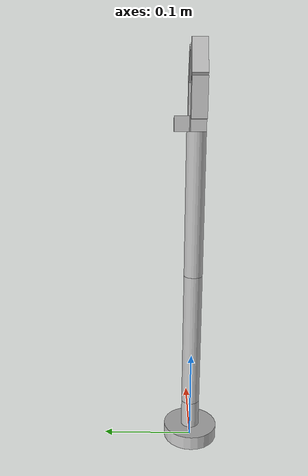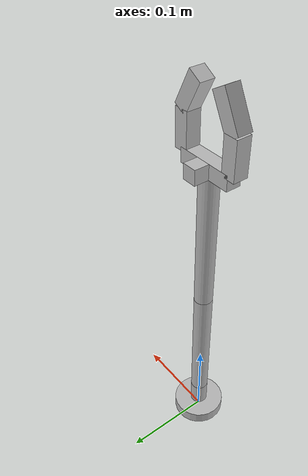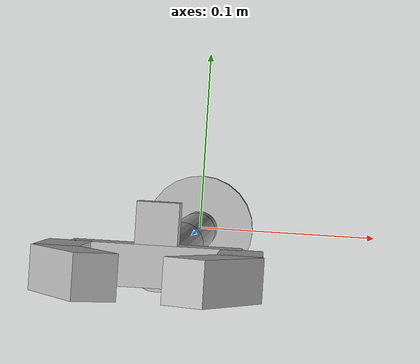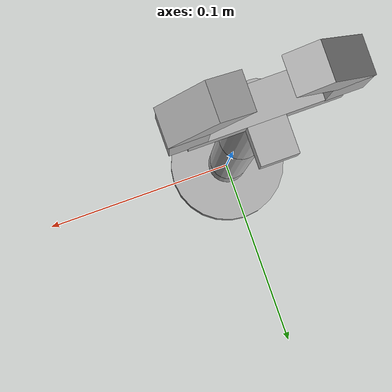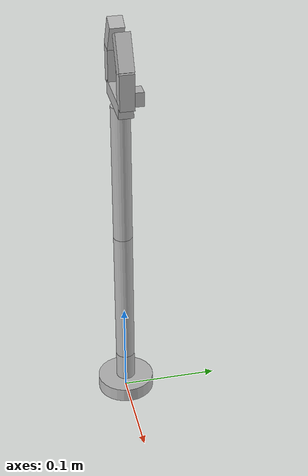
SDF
<?xml version="1.0" ?>
<sdf version="1.6">
	<model name="RobotArm">
		<link name="arm_base">
			<pose>0 0 0.0075 0 0 0</pose>
			<inertial>
				<inertia>
					<ixx>0.24375000</ixx>
					<iyy>0.24375000</iyy>
					<izz>0.45000000</izz>
				</inertia>
				<mass>1000.00000000</mass>
			</inertial>
			<visual name="arm_base_vis">
				<geometry>
					<cylinder>
						<radius>0.03</radius>
						<length>0.015</length>
					</cylinder>
				</geometry>
			</visual>
			<collision name="arm_base_col">
				<geometry>
					<cylinder>
						<radius>0.03</radius>
						<length>0.015</length>
					</cylinder>
				</geometry>
			</collision>
		</link>
		<joint name="bodyLink_armBase" type="fixed">
			<pose>0 0 0 0 0 0</pose>
			<child>arm_base</child>
			<parent>body_link</parent>
		</joint>
		<link name="arm_base_top">
			<pose>0 0 0.03 0 0 0</pose>
			<inertial>
				<inertia>
					<ixx>0.00005000</ixx>
					<iyy>0.00005000</iyy>
					<izz>0.00002500</izz>
				</inertia>
				<mass>0.50000000</mass>
			</inertial>
			<visual name="arm_base_top_vis">
				<geometry>
					<cylinder>
						<radius>0.01</radius>
						<length>0.03</length>
					</cylinder>
				</geometry>
			</visual>
			<collision name="arm_base_top_col">
				<geometry>
					<cylinder>
						<radius>0.01</radius>
						<length>0.03</length>
					</cylinder>
				</geometry>
			</collision>
		</link>
		<joint name="armBase_armBaseTop" type="revolute">
			<pose>0 0 -0.015 0 0 0</pose>
			<child>arm_base_top</child>
			<parent>arm_base</parent>
			<axis>
				<xyz>0 0 1</xyz>
				<dynamics>
					<friction>0.05</friction>
					<damping>0.03</damping>
				</dynamics>
			</axis>
		</joint>
		<link name="arm1">
			<pose>0 0 0.12 0 0 0</pose>
			<inertial>
				<inertia>
					<ixx>0.00190000</ixx>
					<iyy>0.00190000</iyy>
					<izz>0.00005000</izz>
				</inertia>
				<mass>1.00000000</mass>
			</inertial>
			<visual name="arm1_vis">
				<geometry>
					<cylinder>
						<radius>0.01</radius>
						<length>0.15</length>
					</cylinder>
				</geometry>
			</visual>
			<collision name="arm1_col">
				<geometry>
					<cylinder>
						<radius>0.01</radius>
						<length>0.15</length>
					</cylinder>
				</geometry>
			</collision>
		</link>
		<joint name="armBaseTop_arm1" type="revolute">
			<pose>0 0 -0.075 0 0 0</pose>
			<child>arm1</child>
			<parent>arm_base_top</parent>
			<axis>
				<xyz>1 0 0</xyz>
				<dynamics>
					<friction>0.05</friction>
					<damping>0.03</damping>
				</dynamics>
				<limit>
					<upper>3.141592653589793</upper>
					<lower>-3.141592653589793</lower>
				</limit>
			</axis>
		</joint>
		<link name="arm2">
			<pose>0 0 0.27 0 0 0</pose>
			<inertial>
				<inertia>
					<ixx>0.00190000</ixx>
					<iyy>0.00190000</iyy>
					<izz>0.00005000</izz>
				</inertia>
				<mass>1.00000000</mass>
			</inertial>
			<visual name="arm2_vis">
				<geometry>
					<cylinder>
						<radius>0.01</radius>
						<length>0.15</length>
					</cylinder>
				</geometry>
			</visual>
			<collision name="arm2_col">
				<geometry>
					<cylinder>
						<radius>0.01</radius>
						<length>0.15</length>
					</cylinder>
				</geometry>
			</collision>
		</link>
		<joint name="arm1_arm2" type="revolute">
			<pose>0 0 -0.075 0 0 0</pose>
			<child>arm2</child>
			<parent>arm1</parent>
			<axis>
				<xyz>1 0 0</xyz>
				<dynamics>
					<friction>0.05</friction>
					<damping>0.03</damping>
				</dynamics>
				<limit>
					<upper>3.141592653589793</upper>
					<lower>-3.141592653589793</lower>
				</limit>
			</axis>
		</joint>
		<link name="palm">
			<pose>0 0 0.35250000000000004 0 0 0</pose>
			<inertial>
				<inertia>
					<ixx>0.00000625</ixx>
					<iyy>0.00005312</iyy>
					<izz>0.00005312</izz>
				</inertia>
				<mass>0.16666667</mass>
			</inertial>
			<visual name="palm_vis">
				<geometry>
					<box>
						<size>0.06 0.015 0.015</size>
					</box>
				</geometry>
			</visual>
			<collision name="palm_col">
				<geometry>
					<box>
						<size>0.06 0.015 0.015</size>
					</box>
				</geometry>
			</collision>
		</link>
		<joint name="palm_joint" type="revolute">
			<pose>0 0 0 0 0 0</pose>
			<child>palm</child>
			<parent>arm2</parent>
			<axis>
				<xyz>1 0 0</xyz>
				<dynamics>
					<friction>0.05</friction>
					<damping>0.03</damping>
				</dynamics>
				<limit>
					<upper>3.141592653589793</upper>
					<lower>-3.141592653589793</lower>
				</limit>
			</axis>
		</joint>
		<link name="finger_one">
			<pose>0.03 0 0.37500000000000006 0 0 0</pose>
			<inertial>
				<inertia>
					<ixx>0.00002266</ixx>
					<iyy>0.00002266</iyy>
					<izz>0.00000625</izz>
				</inertia>
				<mass>0.16666667</mass>
			</inertial>
			<visual name="finger_one_vis">
				<geometry>
					<box>
						<size>0.015 0.015 0.0375</size>
					</box>
				</geometry>
			</visual>
			<collision name="finger_one_col">
				<geometry>
					<box>
						<size>0.015 0.015 0.0375</size>
					</box>
				</geometry>
			</collision>
			<sensor name="finger_one_sensor" type="contact">
				<contact>
					<collision>finger_one_col</collision>
				</contact>
				<always_on>1</always_on>
				<update_rate>30</update_rate>
				<visualize>true</visualize>
				<plugin filename="libcontact_plugin.so" name="my_plugin"/>
			</sensor>
		</link>
		<joint name="finger_one_joint" type="revolute">
			<pose>0 0 -0.01875 0 0 0</pose>
			<child>finger_one</child>
			<parent>palm</parent>
			<axis>
				<xyz>0 1 0</xyz>
				<dynamics>
					<friction>0.05</friction>
					<damping>0.03</damping>
				</dynamics>
				<limit>
					<upper>0</upper>
					<lower>0.7853981633974483</lower>
				</limit>
			</axis>
		</joint>
		<link name="finger_two">
			<pose>-0.03 0 0.37500000000000006 0 0 0</pose>
			<inertial>
				<inertia>
					<ixx>0.00002266</ixx>
					<iyy>0.00002266</iyy>
					<izz>0.00000625</izz>
				</inertia>
				<mass>0.16666667</mass>
			</inertial>
			<visual name="finger_two_vis">
				<geometry>
					<box>
						<size>0.015 0.015 0.0375</size>
					</box>
				</geometry>
			</visual>
			<collision name="finger_two_col">
				<geometry>
					<box>
						<size>0.015 0.015 0.0375</size>
					</box>
				</geometry>
			</collision>
			<sensor name="finger_two_sensor" type="contact">
				<contact>
					<collision>finger_two_col</collision>
				</contact>
				<always_on>1</always_on>
				<update_rate>30</update_rate>
				<visualize>true</visualize>
				<plugin filename="libcontact_plugin.so" name="my_plugin"/>
			</sensor>
		</link>
		<joint name="finger_two_joint" type="revolute">
			<pose>0 0 -0.01875 0 0 0</pose>
			<child>finger_two</child>
			<parent>palm</parent>
			<axis>
				<xyz>0 1 0</xyz>
				<dynamics>
					<friction>0.05</friction>
					<damping>0.03</damping>
				</dynamics>
				<limit>
					<upper>-0.7853981633974483</upper>
					<lower>0</lower>
				</limit>
			</axis>
		</joint>
		<link name="camera_link">
			<pose>0 0.015 0.35250000000000004 0 -1.5707963267948966 0</pose>
			<inertial>
				<inertia>
					<ixx>0.00000375</ixx>
					<iyy>0.00000375</iyy>
					<izz>0.00000375</izz>
				</inertia>
				<mass>0.10000000</mass>
			</inertial>
			<visual name="camera_link_vis">
				<geometry>
					<box>
						<size>0.015 0.015 0.015</size>
					</box>
				</geometry>
			</visual>
			<collision name="camera_link_col">
				<geometry>
					<box>
						<size>0.015 0.015 0.015</size>
					</box>
				</geometry>
			</collision>
		</link>
		<joint name="camera_link_joint" type="fixed">
			<pose>0 0 0 0 0 0</pose>
			<child>palm</child>
			<parent>camera_link</parent>
		</joint>
		<link name="objDistanceSensor_link">
			<pose>0 0.015 0.35250000000000004 0 -1.5707963267948966 0</pose>
			<inertial>
				<inertia>
					<ixx>0.00000375</ixx>
					<iyy>0.00000375</iyy>
					<izz>0.00000375</izz>
				</inertia>
				<mass>0.10000000</mass>
			</inertial>
			<visual name="objDistanceSensor_link_vis">
				<geometry>
					<box>
						<size>0.015 0.015 0.015</size>
					</box>
				</geometry>
			</visual>
			<collision name="objDistanceSensor_link_col">
				<geometry>
					<box>
						<size>0.015 0.015 0.015</size>
					</box>
				</geometry>
			</collision>
		</link>
		<joint name="objDistanceSensor_link_joint" type="fixed">
			<pose>0 0 0 0 0 0</pose>
			<child>palm</child>
			<parent>objDistanceSensor_link</parent>
		</joint>
		<link name="finger_one_tip">
			<pose>0.0225 0 0.40875000000000006 0 -0.5 0</pose>
			<inertial>
				<inertia>
					<ixx>0.00002266</ixx>
					<iyy>0.00002266</iyy>
					<izz>0.00000625</izz>
				</inertia>
				<mass>0.16666667</mass>
			</inertial>
			<visual name="finger_one_tip_vis">
				<geometry>
					<box>
						<size>0.015 0.015 0.0375</size>
					</box>
				</geometry>
			</visual>
			<collision name="finger_one_tip_col">
				<geometry>
					<box>
						<size>0.015 0.015 0.0375</size>
					</box>
				</geometry>
			</collision>
			<sensor name="finger_one_tip_sensor" type="contact">
				<contact>
					<collision>finger_one_tip_col</collision>
				</contact>
				<always_on>1</always_on>
				<update_rate>30</update_rate>
				<visualize>true</visualize>
				<plugin filename="libcontact_plugin.so" name="my_plugin"/>
			</sensor>
		</link>
		<joint name="finger_one_tip_joint" type="fixed">
			<pose>0 0 -0.015 0 0 0</pose>
			<child>finger_one_tip</child>
			<parent>finger_one</parent>
		</joint>
		<link name="finger_two_tip">
			<pose>-0.0225 0 0.40875000000000006 0 0.5 0</pose>
			<inertial>
				<inertia>
					<ixx>0.00002266</ixx>
					<iyy>0.00002266</iyy>
					<izz>0.00000625</izz>
				</inertia>
				<mass>0.16666667</mass>
			</inertial>
			<visual name="finger_two_tip_vis">
				<geometry>
					<box>
						<size>0.015 0.015 0.0375</size>
					</box>
				</geometry>
			</visual>
			<collision name="finger_two_tip_col">
				<geometry>
					<box>
						<size>0.015 0.015 0.0375</size>
					</box>
				</geometry>
			</collision>
			<sensor name="finger_two_tip_sensor" type="contact">
				<contact>
					<collision>finger_two_tip_col</collision>
				</contact>
				<always_on>1</always_on>
				<update_rate>30</update_rate>
				<visualize>true</visualize>
				<plugin filename="libcontact_plugin.so" name="my_plugin"/>
			</sensor>
		</link>
		<joint name="finger_two_tip_joint" type="fixed">
			<pose>0 0 -0.015 0 0 0</pose>
			<child>finger_two_tip</child>
			<parent>finger_two</parent>
		</joint>
		<plugin filename="libgripper_plugin.so" name="gripper_plugin"/>
		<plugin filename="libarm_controller.so" name="arm_controller"/>
	</model>
</sdf>
